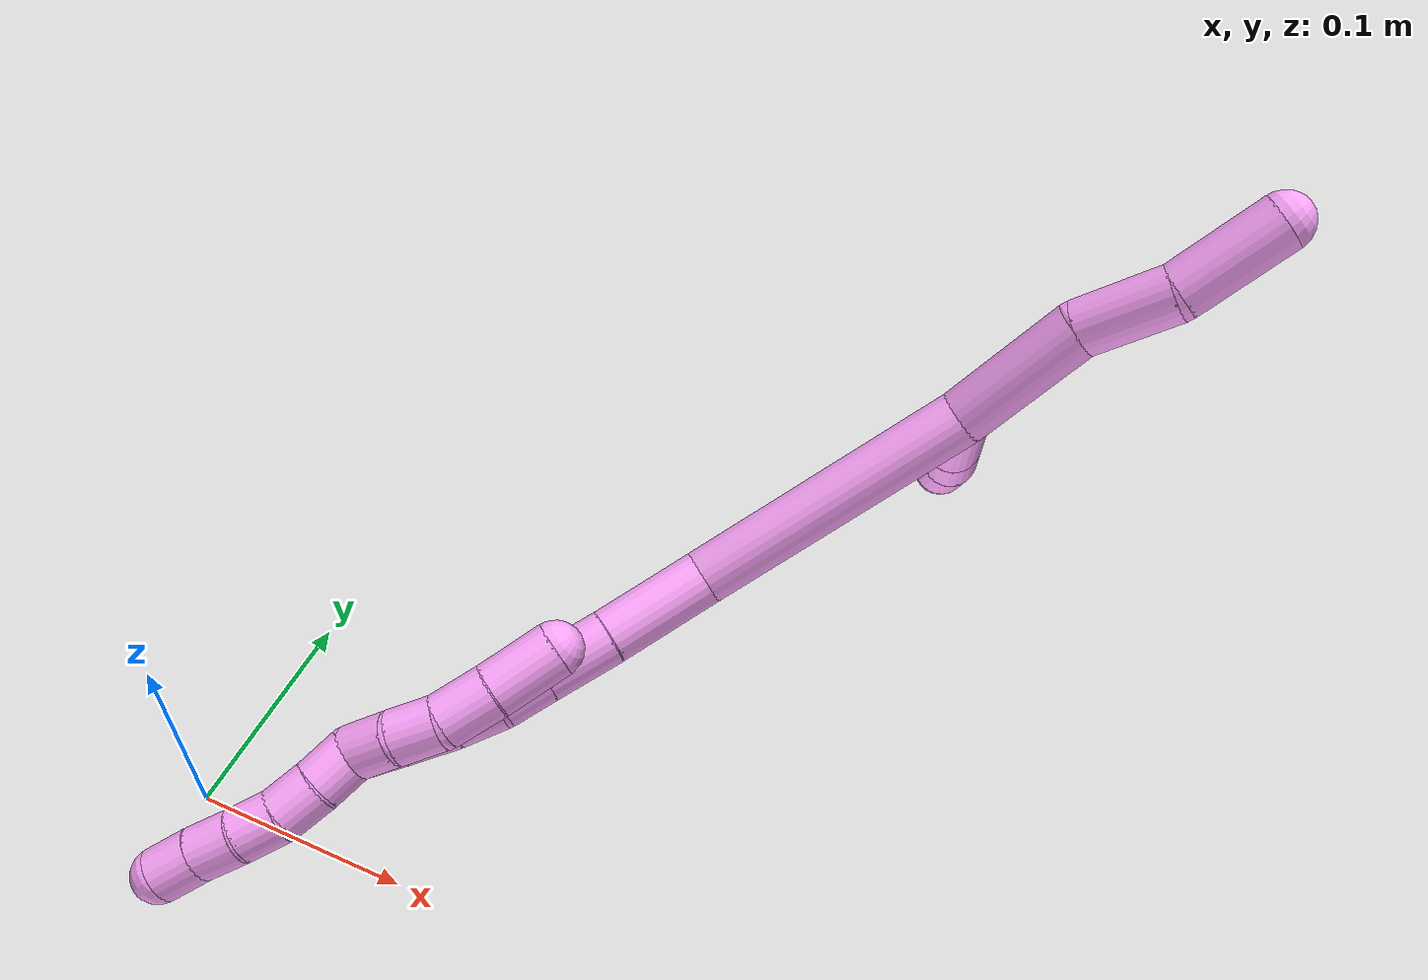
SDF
<sdf version="1.7">
 <world name="default">
  <model name="4">
   <static>0</static>
   <link name="4">
    <collision name="collision-cylinder-e_1_2_8">
     <pose>-0.001395 -0.004408 0.030344 0.144243 -0.045473 -0.003286</pose>
     <geometry><cylinder><radius>0.0125</radius><length>0.061388</length></cylinder></geometry>
     <surface>
      <friction><ode><mu>1.16</mu><mu2>1.16</mu2><slip1>0</slip1><slip2>0</slip2></ode></friction>
      <contact><ode><kp>1e+06</kp><kd>1</kd><max_vel>0</max_vel><min_depth>0.001</min_depth></ode></contact>
     </surface>
    </collision>
    <visual name="visual-cylinder-e_1_2_8">
     <pose>-0.001395 -0.004408 0.030344 0.144243 -0.045473 -0.003286</pose>
     <geometry><cylinder><radius>0.0125</radius><length>0.061388</length></cylinder></geometry>
     <material><ambient>1 0.65098 0.996078 1</ambient></material>
    </visual>
    <collision name="collision-cylinder-e_2_8_9">
     <pose>0.002059 -0.013838 0.080148 0.252595 0.236783 0.030204</pose>
     <geometry><cylinder><radius>0.0125</radius><length>0.041349</length></cylinder></geometry>
     <surface>
      <friction><ode><mu>1.16</mu><mu2>1.16</mu2><slip1>0</slip1><slip2>0</slip2></ode></friction>
      <contact><ode><kp>1e+06</kp><kd>1</kd><max_vel>0</max_vel><min_depth>0.001</min_depth></ode></contact>
     </surface>
    </collision>
    <visual name="visual-cylinder-e_2_8_9">
     <pose>0.002059 -0.013838 0.080148 0.252595 0.236783 0.030204</pose>
     <geometry><cylinder><radius>0.0125</radius><length>0.041349</length></cylinder></geometry>
     <material><ambient>1 0.65098 0.996078 1</ambient></material>
    </visual>
    <collision name="collision-cylinder-e_3_9_6">
     <pose>0.008066 -0.019452 0.123203 0.025056 0.048978 0.000614</pose>
     <geometry><cylinder><radius>0.0125</radius><length>0.047263</length></cylinder></geometry>
     <surface>
      <friction><ode><mu>1.16</mu><mu2>1.16</mu2><slip1>0</slip1><slip2>0</slip2></ode></friction>
      <contact><ode><kp>1e+06</kp><kd>1</kd><max_vel>0</max_vel><min_depth>0.001</min_depth></ode></contact>
     </surface>
    </collision>
    <visual name="visual-cylinder-e_3_9_6">
     <pose>0.008066 -0.019452 0.123203 0.025056 0.048978 0.000614</pose>
     <geometry><cylinder><radius>0.0125</radius><length>0.047263</length></cylinder></geometry>
     <material><ambient>1 0.65098 0.996078 1</ambient></material>
    </visual>
    <collision name="collision-cylinder-e_1_2_10">
     <pose>0.010504 0.021343 -0.007729 -1.91823 0.433396 -0.608261</pose>
     <geometry><cylinder><radius>0.0125</radius><length>0.050023</length></cylinder></geometry>
     <surface>
      <friction><ode><mu>1.16</mu><mu2>1.16</mu2><slip1>0</slip1><slip2>0</slip2></ode></friction>
      <contact><ode><kp>1e+06</kp><kd>1</kd><max_vel>0</max_vel><min_depth>0.001</min_depth></ode></contact>
     </surface>
    </collision>
    <visual name="visual-cylinder-e_1_2_10">
     <pose>0.010504 0.021343 -0.007729 -1.91823 0.433396 -0.608261</pose>
     <geometry><cylinder><radius>0.0125</radius><length>0.050023</length></cylinder></geometry>
     <material><ambient>1 0.65098 0.996078 1</ambient></material>
    </visual>
    <collision name="collision-cylinder-e_2_10_11">
     <pose>0.027049 0.055051 -0.019908 -1.91628 0.430936 -0.603737</pose>
     <geometry><cylinder><radius>0.0125</radius><length>0.02893</length></cylinder></geometry>
     <surface>
      <friction><ode><mu>1.16</mu><mu2>1.16</mu2><slip1>0</slip1><slip2>0</slip2></ode></friction>
      <contact><ode><kp>1e+06</kp><kd>1</kd><max_vel>0</max_vel><min_depth>0.001</min_depth></ode></contact>
     </surface>
    </collision>
    <visual name="visual-cylinder-e_2_10_11">
     <pose>0.027049 0.055051 -0.019908 -1.91628 0.430936 -0.603737</pose>
     <geometry><cylinder><radius>0.0125</radius><length>0.02893</length></cylinder></geometry>
     <material><ambient>1 0.65098 0.996078 1</ambient></material>
    </visual>
    <collision name="collision-cylinder-e_3_11_5">
     <pose>0.03617 0.076558 -0.028568 -2.00231 0.296815 -0.458656</pose>
     <geometry><cylinder><radius>0.0125</radius><length>0.021048</length></cylinder></geometry>
     <surface>
      <friction><ode><mu>1.16</mu><mu2>1.16</mu2><slip1>0</slip1><slip2>0</slip2></ode></friction>
      <contact><ode><kp>1e+06</kp><kd>1</kd><max_vel>0</max_vel><min_depth>0.001</min_depth></ode></contact>
     </surface>
    </collision>
    <visual name="visual-cylinder-e_3_11_5">
     <pose>0.03617 0.076558 -0.028568 -2.00231 0.296815 -0.458656</pose>
     <geometry><cylinder><radius>0.0125</radius><length>0.021048</length></cylinder></geometry>
     <material><ambient>1 0.65098 0.996078 1</ambient></material>
    </visual>
    <collision name="collision-cylinder-e_1_2_12">
     <pose>-0.008099 -0.006649 -0.064407 3.03872 -0.124431 -1.76033</pose>
     <geometry><cylinder><radius>0.0125</radius><length>0.130507</length></cylinder></geometry>
     <surface>
      <friction><ode><mu>1.16</mu><mu2>1.16</mu2><slip1>0</slip1><slip2>0</slip2></ode></friction>
      <contact><ode><kp>1e+06</kp><kd>1</kd><max_vel>0</max_vel><min_depth>0.001</min_depth></ode></contact>
     </surface>
    </collision>
    <visual name="visual-cylinder-e_1_2_12">
     <pose>-0.008099 -0.006649 -0.064407 3.03872 -0.124431 -1.76033</pose>
     <geometry><cylinder><radius>0.0125</radius><length>0.130507</length></cylinder></geometry>
     <material><ambient>1 0.65098 0.996078 1</ambient></material>
    </visual>
    <collision name="collision-cylinder-e_2_12_13">
     <pose>-0.021 -0.022724 -0.150907 2.73837 -0.197346 -0.902086</pose>
     <geometry><cylinder><radius>0.0125</radius><length>0.048992</length></cylinder></geometry>
     <surface>
      <friction><ode><mu>1.16</mu><mu2>1.16</mu2><slip1>0</slip1><slip2>0</slip2></ode></friction>
      <contact><ode><kp>1e+06</kp><kd>1</kd><max_vel>0</max_vel><min_depth>0.001</min_depth></ode></contact>
     </surface>
    </collision>
    <visual name="visual-cylinder-e_2_12_13">
     <pose>-0.021 -0.022724 -0.150907 2.73837 -0.197346 -0.902086</pose>
     <geometry><cylinder><radius>0.0125</radius><length>0.048992</length></cylinder></geometry>
     <material><ambient>1 0.65098 0.996078 1</ambient></material>
    </visual>
    <collision name="collision-cylinder-e_3_13_14">
     <pose>-0.029323 -0.0377 -0.187867 2.7842 -0.21826 -1.09051</pose>
     <geometry><cylinder><radius>0.0125</radius><length>0.032509</length></cylinder></geometry>
     <surface>
      <friction><ode><mu>1.16</mu><mu2>1.16</mu2><slip1>0</slip1><slip2>0</slip2></ode></friction>
      <contact><ode><kp>1e+06</kp><kd>1</kd><max_vel>0</max_vel><min_depth>0.001</min_depth></ode></contact>
     </surface>
    </collision>
    <visual name="visual-cylinder-e_3_13_14">
     <pose>-0.029323 -0.0377 -0.187867 2.7842 -0.21826 -1.09051</pose>
     <geometry><cylinder><radius>0.0125</radius><length>0.032509</length></cylinder></geometry>
     <material><ambient>1 0.65098 0.996078 1</ambient></material>
    </visual>
    <collision name="collision-cylinder-e_4_14_15">
     <pose>-0.03503 -0.046911 -0.212776 2.7922 -0.201903 -1.04206</pose>
     <geometry><cylinder><radius>0.0125</radius><length>0.02182</length></cylinder></geometry>
     <surface>
      <friction><ode><mu>1.16</mu><mu2>1.16</mu2><slip1>0</slip1><slip2>0</slip2></ode></friction>
      <contact><ode><kp>1e+06</kp><kd>1</kd><max_vel>0</max_vel><min_depth>0.001</min_depth></ode></contact>
     </surface>
    </collision>
    <visual name="visual-cylinder-e_4_14_15">
     <pose>-0.03503 -0.046911 -0.212776 2.7922 -0.201903 -1.04206</pose>
     <geometry><cylinder><radius>0.0125</radius><length>0.02182</length></cylinder></geometry>
     <material><ambient>1 0.65098 0.996078 1</ambient></material>
    </visual>
    <collision name="collision-cylinder-e_5_15_16">
     <pose>-0.040517 -0.052591 -0.23274 2.94056 -0.315033 -2.01012</pose>
     <geometry><cylinder><radius>0.0125</radius><length>0.021298</length></cylinder></geometry>
     <surface>
      <friction><ode><mu>1.16</mu><mu2>1.16</mu2><slip1>0</slip1><slip2>0</slip2></ode></friction>
      <contact><ode><kp>1e+06</kp><kd>1</kd><max_vel>0</max_vel><min_depth>0.001</min_depth></ode></contact>
     </surface>
    </collision>
    <visual name="visual-cylinder-e_5_15_16">
     <pose>-0.040517 -0.052591 -0.23274 2.94056 -0.315033 -2.01012</pose>
     <geometry><cylinder><radius>0.0125</radius><length>0.021298</length></cylinder></geometry>
     <material><ambient>1 0.65098 0.996078 1</ambient></material>
    </visual>
    <collision name="collision-cylinder-e_6_16_17">
     <pose>-0.048636 -0.05713 -0.253486 2.91311 -0.409151 -2.13128</pose>
     <geometry><cylinder><radius>0.0125</radius><length>0.024227</length></cylinder></geometry>
     <surface>
      <friction><ode><mu>1.16</mu><mu2>1.16</mu2><slip1>0</slip1><slip2>0</slip2></ode></friction>
      <contact><ode><kp>1e+06</kp><kd>1</kd><max_vel>0</max_vel><min_depth>0.001</min_depth></ode></contact>
     </surface>
    </collision>
    <visual name="visual-cylinder-e_6_16_17">
     <pose>-0.048636 -0.05713 -0.253486 2.91311 -0.409151 -2.13128</pose>
     <geometry><cylinder><radius>0.0125</radius><length>0.024227</length></cylinder></geometry>
     <material><ambient>1 0.65098 0.996078 1</ambient></material>
    </visual>
    <collision name="collision-cylinder-e_7_17_1">
     <pose>-0.058147 -0.063597 -0.272615 2.69764 -0.471726 -1.6336</pose>
     <geometry><cylinder><radius>0.0125</radius><length>0.020647</length></cylinder></geometry>
     <surface>
      <friction><ode><mu>1.16</mu><mu2>1.16</mu2><slip1>0</slip1><slip2>0</slip2></ode></friction>
      <contact><ode><kp>1e+06</kp><kd>1</kd><max_vel>0</max_vel><min_depth>0.001</min_depth></ode></contact>
     </surface>
    </collision>
    <visual name="visual-cylinder-e_7_17_1">
     <pose>-0.058147 -0.063597 -0.272615 2.69764 -0.471726 -1.6336</pose>
     <geometry><cylinder><radius>0.0125</radius><length>0.020647</length></cylinder></geometry>
     <material><ambient>1 0.65098 0.996078 1</ambient></material>
    </visual>
    <collision name="collision-cylinder-e_1_1_18">
     <pose>-0.062992 -0.071731 -0.290001 2.70984 -0.015378 -0.070097</pose>
     <geometry><cylinder><radius>0.0125</radius><length>0.02</length></cylinder></geometry>
     <surface>
      <friction><ode><mu>1.16</mu><mu2>1.16</mu2><slip1>0</slip1><slip2>0</slip2></ode></friction>
      <contact><ode><kp>1e+06</kp><kd>1</kd><max_vel>0</max_vel><min_depth>0.001</min_depth></ode></contact>
     </surface>
    </collision>
    <visual name="visual-cylinder-e_1_1_18">
     <pose>-0.062992 -0.071731 -0.290001 2.70984 -0.015378 -0.070097</pose>
     <geometry><cylinder><radius>0.0125</radius><length>0.02</length></cylinder></geometry>
     <material><ambient>1 0.65098 0.996078 1</ambient></material>
    </visual>
    <collision name="collision-cylinder-e_2_18_19">
     <pose>-0.063766 -0.079148 -0.308525 2.81175 -0.062108 -0.36904</pose>
     <geometry><cylinder><radius>0.0125</radius><length>0.02</length></cylinder></geometry>
     <surface>
      <friction><ode><mu>1.16</mu><mu2>1.16</mu2><slip1>0</slip1><slip2>0</slip2></ode></friction>
      <contact><ode><kp>1e+06</kp><kd>1</kd><max_vel>0</max_vel><min_depth>0.001</min_depth></ode></contact>
     </surface>
    </collision>
    <visual name="visual-cylinder-e_2_18_19">
     <pose>-0.063766 -0.079148 -0.308525 2.81175 -0.062108 -0.36904</pose>
     <geometry><cylinder><radius>0.0125</radius><length>0.02</length></cylinder></geometry>
     <material><ambient>1 0.65098 0.996078 1</ambient></material>
    </visual>
    <collision name="collision-cylinder-e_3_19_20">
     <pose>-0.066767 -0.084278 -0.327493 2.94497 -0.240319 -1.7717</pose>
     <geometry><cylinder><radius>0.0125</radius><length>0.02</length></cylinder></geometry>
     <surface>
      <friction><ode><mu>1.16</mu><mu2>1.16</mu2><slip1>0</slip1><slip2>0</slip2></ode></friction>
      <contact><ode><kp>1e+06</kp><kd>1</kd><max_vel>0</max_vel><min_depth>0.001</min_depth></ode></contact>
     </surface>
    </collision>
    <visual name="visual-cylinder-e_3_19_20">
     <pose>-0.066767 -0.084278 -0.327493 2.94497 -0.240319 -1.7717</pose>
     <geometry><cylinder><radius>0.0125</radius><length>0.02</length></cylinder></geometry>
     <material><ambient>1 0.65098 0.996078 1</ambient></material>
    </visual>
    <collision name="collision-cylinder-e_4_20_21">
     <pose>-0.071589 -0.086846 -0.346693 3.07246 -0.246699 -2.59756</pose>
     <geometry><cylinder><radius>0.0125</radius><length>0.02</length></cylinder></geometry>
     <surface>
      <friction><ode><mu>1.16</mu><mu2>1.16</mu2><slip1>0</slip1><slip2>0</slip2></ode></friction>
      <contact><ode><kp>1e+06</kp><kd>1</kd><max_vel>0</max_vel><min_depth>0.001</min_depth></ode></contact>
     </surface>
    </collision>
    <visual name="visual-cylinder-e_4_20_21">
     <pose>-0.071589 -0.086846 -0.346693 3.07246 -0.246699 -2.59756</pose>
     <geometry><cylinder><radius>0.0125</radius><length>0.02</length></cylinder></geometry>
     <material><ambient>1 0.65098 0.996078 1</ambient></material>
    </visual>
    <collision name="collision-cylinder-e_5_21_4">
     <pose>-0.075833 -0.08855 -0.366149 3.03626 -0.181189 -2.08999</pose>
     <geometry><cylinder><radius>0.0125</radius><length>0.02</length></cylinder></geometry>
     <surface>
      <friction><ode><mu>1.16</mu><mu2>1.16</mu2><slip1>0</slip1><slip2>0</slip2></ode></friction>
      <contact><ode><kp>1e+06</kp><kd>1</kd><max_vel>0</max_vel><min_depth>0.001</min_depth></ode></contact>
     </surface>
    </collision>
    <visual name="visual-cylinder-e_5_21_4">
     <pose>-0.075833 -0.08855 -0.366149 3.03626 -0.181189 -2.08999</pose>
     <geometry><cylinder><radius>0.0125</radius><length>0.02</length></cylinder></geometry>
     <material><ambient>1 0.65098 0.996078 1</ambient></material>
    </visual>
    <collision name="collision-cylinder-e_1_1_22">
     <pose>-0.060151 -0.069067 -0.270428 0.143842 0.248221 0.017975</pose>
     <geometry><cylinder><radius>0.0125</radius><length>0.021872</length></cylinder></geometry>
     <surface>
      <friction><ode><mu>1.16</mu><mu2>1.16</mu2><slip1>0</slip1><slip2>0</slip2></ode></friction>
      <contact><ode><kp>1e+06</kp><kd>1</kd><max_vel>0</max_vel><min_depth>0.001</min_depth></ode></contact>
     </surface>
    </collision>
    <visual name="visual-cylinder-e_1_1_22">
     <pose>-0.060151 -0.069067 -0.270428 0.143842 0.248221 0.017975</pose>
     <geometry><cylinder><radius>0.0125</radius><length>0.021872</length></cylinder></geometry>
     <material><ambient>1 0.65098 0.996078 1</ambient></material>
    </visual>
    <collision name="collision-cylinder-e_2_22_23">
     <pose>-0.053878 -0.070069 -0.249805 -0.051004 0.339759 -0.008751</pose>
     <geometry><cylinder><radius>0.0125</radius><length>0.021521</length></cylinder></geometry>
     <surface>
      <friction><ode><mu>1.16</mu><mu2>1.16</mu2><slip1>0</slip1><slip2>0</slip2></ode></friction>
      <contact><ode><kp>1e+06</kp><kd>1</kd><max_vel>0</max_vel><min_depth>0.001</min_depth></ode></contact>
     </surface>
    </collision>
    <visual name="visual-cylinder-e_2_22_23">
     <pose>-0.053878 -0.070069 -0.249805 -0.051004 0.339759 -0.008751</pose>
     <geometry><cylinder><radius>0.0125</radius><length>0.021521</length></cylinder></geometry>
     <material><ambient>1 0.65098 0.996078 1</ambient></material>
    </visual>
    <collision name="collision-cylinder-e_3_23_24">
     <pose>-0.04807 -0.066155 -0.227842 -0.279593 0.178628 -0.025201</pose>
     <geometry><cylinder><radius>0.0125</radius><length>0.025016</length></cylinder></geometry>
     <surface>
      <friction><ode><mu>1.16</mu><mu2>1.16</mu2><slip1>0</slip1><slip2>0</slip2></ode></friction>
      <contact><ode><kp>1e+06</kp><kd>1</kd><max_vel>0</max_vel><min_depth>0.001</min_depth></ode></contact>
     </surface>
    </collision>
    <visual name="visual-cylinder-e_3_23_24">
     <pose>-0.04807 -0.066155 -0.227842 -0.279593 0.178628 -0.025201</pose>
     <geometry><cylinder><radius>0.0125</radius><length>0.025016</length></cylinder></geometry>
     <material><ambient>1 0.65098 0.996078 1</ambient></material>
    </visual>
    <collision name="collision-cylinder-e_4_24_3">
     <pose>-0.043371 -0.057445 -0.201343 -0.347515 0.157408 -0.027685</pose>
     <geometry><cylinder><radius>0.0125</radius><length>0.031591</length></cylinder></geometry>
     <surface>
      <friction><ode><mu>1.16</mu><mu2>1.16</mu2><slip1>0</slip1><slip2>0</slip2></ode></friction>
      <contact><ode><kp>1e+06</kp><kd>1</kd><max_vel>0</max_vel><min_depth>0.001</min_depth></ode></contact>
     </surface>
    </collision>
    <visual name="visual-cylinder-e_4_24_3">
     <pose>-0.043371 -0.057445 -0.201343 -0.347515 0.157408 -0.027685</pose>
     <geometry><cylinder><radius>0.0125</radius><length>0.031591</length></cylinder></geometry>
     <material><ambient>1 0.65098 0.996078 1</ambient></material>
    </visual>
    <collision name="collision-sphere-3">
     <pose>-0.040895 -0.052133 -0.186675 0 -0 0</pose>
     <geometry><sphere><radius>0.0125</radius></sphere></geometry>
     <surface>
      <friction><ode><mu>1.16</mu><mu2>1.16</mu2><slip1>0</slip1><slip2>0</slip2></ode></friction>
      <contact><ode><kp>1e+06</kp><kd>1</kd><max_vel>0</max_vel><min_depth>0.001</min_depth></ode></contact>
     </surface>
    </collision>
    <visual name="visual-sphere-3">
     <pose>-0.040895 -0.052133 -0.186675 0 -0 0</pose>
     <geometry><sphere><radius>0.0125</radius></sphere></geometry>
     <material><ambient>1 0.65098 0.996078 1</ambient></material>
    </visual>
    <collision name="collision-sphere-24">
     <pose>-0.045847 -0.062758 -0.216011 0 -0 0</pose>
     <geometry><sphere><radius>0.0125</radius></sphere></geometry>
     <surface>
      <friction><ode><mu>1.16</mu><mu2>1.16</mu2><slip1>0</slip1><slip2>0</slip2></ode></friction>
      <contact><ode><kp>1e+06</kp><kd>1</kd><max_vel>0</max_vel><min_depth>0.001</min_depth></ode></contact>
     </surface>
    </collision>
    <visual name="visual-sphere-24">
     <pose>-0.045847 -0.062758 -0.216011 0 -0 0</pose>
     <geometry><sphere><radius>0.0125</radius></sphere></geometry>
     <material><ambient>1 0.65098 0.996078 1</ambient></material>
    </visual>
    <collision name="collision-sphere-23">
     <pose>-0.050292 -0.069552 -0.239672 0 -0 0</pose>
     <geometry><sphere><radius>0.0125</radius></sphere></geometry>
     <surface>
      <friction><ode><mu>1.16</mu><mu2>1.16</mu2><slip1>0</slip1><slip2>0</slip2></ode></friction>
      <contact><ode><kp>1e+06</kp><kd>1</kd><max_vel>0</max_vel><min_depth>0.001</min_depth></ode></contact>
     </surface>
    </collision>
    <visual name="visual-sphere-23">
     <pose>-0.050292 -0.069552 -0.239672 0 -0 0</pose>
     <geometry><sphere><radius>0.0125</radius></sphere></geometry>
     <material><ambient>1 0.65098 0.996078 1</ambient></material>
    </visual>
    <collision name="collision-sphere-22">
     <pose>-0.057464 -0.070586 -0.259937 0 -0 0</pose>
     <geometry><sphere><radius>0.0125</radius></sphere></geometry>
     <surface>
      <friction><ode><mu>1.16</mu><mu2>1.16</mu2><slip1>0</slip1><slip2>0</slip2></ode></friction>
      <contact><ode><kp>1e+06</kp><kd>1</kd><max_vel>0</max_vel><min_depth>0.001</min_depth></ode></contact>
     </surface>
    </collision>
    <visual name="visual-sphere-22">
     <pose>-0.057464 -0.070586 -0.259937 0 -0 0</pose>
     <geometry><sphere><radius>0.0125</radius></sphere></geometry>
     <material><ambient>1 0.65098 0.996078 1</ambient></material>
    </visual>
    <collision name="collision-sphere-4">
     <pose>-0.077635 -0.089584 -0.37593 0 -0 0</pose>
     <geometry><sphere><radius>0.0125</radius></sphere></geometry>
     <surface>
      <friction><ode><mu>1.16</mu><mu2>1.16</mu2><slip1>0</slip1><slip2>0</slip2></ode></friction>
      <contact><ode><kp>1e+06</kp><kd>1</kd><max_vel>0</max_vel><min_depth>0.001</min_depth></ode></contact>
     </surface>
    </collision>
    <visual name="visual-sphere-4">
     <pose>-0.077635 -0.089584 -0.37593 0 -0 0</pose>
     <geometry><sphere><radius>0.0125</radius></sphere></geometry>
     <material><ambient>1 0.65098 0.996078 1</ambient></material>
    </visual>
    <collision name="collision-sphere-21">
     <pose>-0.074031 -0.087516 -0.356367 0 -0 0</pose>
     <geometry><sphere><radius>0.0125</radius></sphere></geometry>
     <surface>
      <friction><ode><mu>1.16</mu><mu2>1.16</mu2><slip1>0</slip1><slip2>0</slip2></ode></friction>
      <contact><ode><kp>1e+06</kp><kd>1</kd><max_vel>0</max_vel><min_depth>0.001</min_depth></ode></contact>
     </surface>
    </collision>
    <visual name="visual-sphere-21">
     <pose>-0.074031 -0.087516 -0.356367 0 -0 0</pose>
     <geometry><sphere><radius>0.0125</radius></sphere></geometry>
     <material><ambient>1 0.65098 0.996078 1</ambient></material>
    </visual>
    <collision name="collision-sphere-20">
     <pose>-0.069147 -0.086176 -0.337019 0 -0 0</pose>
     <geometry><sphere><radius>0.0125</radius></sphere></geometry>
     <surface>
      <friction><ode><mu>1.16</mu><mu2>1.16</mu2><slip1>0</slip1><slip2>0</slip2></ode></friction>
      <contact><ode><kp>1e+06</kp><kd>1</kd><max_vel>0</max_vel><min_depth>0.001</min_depth></ode></contact>
     </surface>
    </collision>
    <visual name="visual-sphere-20">
     <pose>-0.069147 -0.086176 -0.337019 0 -0 0</pose>
     <geometry><sphere><radius>0.0125</radius></sphere></geometry>
     <material><ambient>1 0.65098 0.996078 1</ambient></material>
    </visual>
    <collision name="collision-sphere-11">
     <pose>0.033092 0.067417 -0.024359 0 -0 0</pose>
     <geometry><sphere><radius>0.0125</radius></sphere></geometry>
     <surface>
      <friction><ode><mu>1.16</mu><mu2>1.16</mu2><slip1>0</slip1><slip2>0</slip2></ode></friction>
      <contact><ode><kp>1e+06</kp><kd>1</kd><max_vel>0</max_vel><min_depth>0.001</min_depth></ode></contact>
     </surface>
    </collision>
    <visual name="visual-sphere-11">
     <pose>0.033092 0.067417 -0.024359 0 -0 0</pose>
     <geometry><sphere><radius>0.0125</radius></sphere></geometry>
     <material><ambient>1 0.65098 0.996078 1</ambient></material>
    </visual>
    <collision name="collision-sphere-10">
     <pose>0.021007 0.042685 -0.015457 0 -0 0</pose>
     <geometry><sphere><radius>0.0125</radius></sphere></geometry>
     <surface>
      <friction><ode><mu>1.16</mu><mu2>1.16</mu2><slip1>0</slip1><slip2>0</slip2></ode></friction>
      <contact><ode><kp>1e+06</kp><kd>1</kd><max_vel>0</max_vel><min_depth>0.001</min_depth></ode></contact>
     </surface>
    </collision>
    <visual name="visual-sphere-10">
     <pose>0.021007 0.042685 -0.015457 0 -0 0</pose>
     <geometry><sphere><radius>0.0125</radius></sphere></geometry>
     <material><ambient>1 0.65098 0.996078 1</ambient></material>
    </visual>
    <collision name="collision-sphere-6">
     <pose>0.009223 -0.020043 0.146799 0 -0 0</pose>
     <geometry><sphere><radius>0.0125</radius></sphere></geometry>
     <surface>
      <friction><ode><mu>1.16</mu><mu2>1.16</mu2><slip1>0</slip1><slip2>0</slip2></ode></friction>
      <contact><ode><kp>1e+06</kp><kd>1</kd><max_vel>0</max_vel><min_depth>0.001</min_depth></ode></contact>
     </surface>
    </collision>
    <visual name="visual-sphere-6">
     <pose>0.009223 -0.020043 0.146799 0 -0 0</pose>
     <geometry><sphere><radius>0.0125</radius></sphere></geometry>
     <material><ambient>1 0.65098 0.996078 1</ambient></material>
    </visual>
    <collision name="collision-sphere-9">
     <pose>0.006909 -0.018861 0.099608 0 -0 0</pose>
     <geometry><sphere><radius>0.0125</radius></sphere></geometry>
     <surface>
      <friction><ode><mu>1.16</mu><mu2>1.16</mu2><slip1>0</slip1><slip2>0</slip2></ode></friction>
      <contact><ode><kp>1e+06</kp><kd>1</kd><max_vel>0</max_vel><min_depth>0.001</min_depth></ode></contact>
     </surface>
    </collision>
    <visual name="visual-sphere-9">
     <pose>0.006909 -0.018861 0.099608 0 -0 0</pose>
     <geometry><sphere><radius>0.0125</radius></sphere></geometry>
     <material><ambient>1 0.65098 0.996078 1</ambient></material>
    </visual>
    <collision name="collision-sphere-2">
     <geometry><sphere><radius>0.0125</radius></sphere></geometry>
     <surface>
      <friction><ode><mu>1.16</mu><mu2>1.16</mu2><slip1>0</slip1><slip2>0</slip2></ode></friction>
      <contact><ode><kp>1e+06</kp><kd>1</kd><max_vel>0</max_vel><min_depth>0.001</min_depth></ode></contact>
     </surface>
    </collision>
    <visual name="visual-sphere-2">
     <geometry><sphere><radius>0.0125</radius></sphere></geometry>
     <material><ambient>1 0.65098 0.996078 1</ambient></material>
    </visual>
    <collision name="collision-sphere-19">
     <pose>-0.064387 -0.082381 -0.317968 0 -0 0</pose>
     <geometry><sphere><radius>0.0125</radius></sphere></geometry>
     <surface>
      <friction><ode><mu>1.16</mu><mu2>1.16</mu2><slip1>0</slip1><slip2>0</slip2></ode></friction>
      <contact><ode><kp>1e+06</kp><kd>1</kd><max_vel>0</max_vel><min_depth>0.001</min_depth></ode></contact>
     </surface>
    </collision>
    <visual name="visual-sphere-19">
     <pose>-0.064387 -0.082381 -0.317968 0 -0 0</pose>
     <geometry><sphere><radius>0.0125</radius></sphere></geometry>
     <material><ambient>1 0.65098 0.996078 1</ambient></material>
    </visual>
    <collision name="collision-sphere-8">
     <pose>-0.002791 -0.008815 0.060688 0 -0 0</pose>
     <geometry><sphere><radius>0.0125</radius></sphere></geometry>
     <surface>
      <friction><ode><mu>1.16</mu><mu2>1.16</mu2><slip1>0</slip1><slip2>0</slip2></ode></friction>
      <contact><ode><kp>1e+06</kp><kd>1</kd><max_vel>0</max_vel><min_depth>0.001</min_depth></ode></contact>
     </surface>
    </collision>
    <visual name="visual-sphere-8">
     <pose>-0.002791 -0.008815 0.060688 0 -0 0</pose>
     <geometry><sphere><radius>0.0125</radius></sphere></geometry>
     <material><ambient>1 0.65098 0.996078 1</ambient></material>
    </visual>
    <collision name="collision-sphere-5">
     <pose>0.039248 0.085699 -0.032777 0 -0 0</pose>
     <geometry><sphere><radius>0.0125</radius></sphere></geometry>
     <surface>
      <friction><ode><mu>1.16</mu><mu2>1.16</mu2><slip1>0</slip1><slip2>0</slip2></ode></friction>
      <contact><ode><kp>1e+06</kp><kd>1</kd><max_vel>0</max_vel><min_depth>0.001</min_depth></ode></contact>
     </surface>
    </collision>
    <visual name="visual-sphere-5">
     <pose>0.039248 0.085699 -0.032777 0 -0 0</pose>
     <geometry><sphere><radius>0.0125</radius></sphere></geometry>
     <material><ambient>1 0.65098 0.996078 1</ambient></material>
    </visual>
    <collision name="collision-sphere-12">
     <pose>-0.016197 -0.013298 -0.128813 0 -0 0</pose>
     <geometry><sphere><radius>0.0125</radius></sphere></geometry>
     <surface>
      <friction><ode><mu>1.16</mu><mu2>1.16</mu2><slip1>0</slip1><slip2>0</slip2></ode></friction>
      <contact><ode><kp>1e+06</kp><kd>1</kd><max_vel>0</max_vel><min_depth>0.001</min_depth></ode></contact>
     </surface>
    </collision>
    <visual name="visual-sphere-12">
     <pose>-0.016197 -0.013298 -0.128813 0 -0 0</pose>
     <geometry><sphere><radius>0.0125</radius></sphere></geometry>
     <material><ambient>1 0.65098 0.996078 1</ambient></material>
    </visual>
    <collision name="collision-sphere-13">
     <pose>-0.025803 -0.032149 -0.173001 0 -0 0</pose>
     <geometry><sphere><radius>0.0125</radius></sphere></geometry>
     <surface>
      <friction><ode><mu>1.16</mu><mu2>1.16</mu2><slip1>0</slip1><slip2>0</slip2></ode></friction>
      <contact><ode><kp>1e+06</kp><kd>1</kd><max_vel>0</max_vel><min_depth>0.001</min_depth></ode></contact>
     </surface>
    </collision>
    <visual name="visual-sphere-13">
     <pose>-0.025803 -0.032149 -0.173001 0 -0 0</pose>
     <geometry><sphere><radius>0.0125</radius></sphere></geometry>
     <material><ambient>1 0.65098 0.996078 1</ambient></material>
    </visual>
    <collision name="collision-sphere-14">
     <pose>-0.032842 -0.043252 -0.202734 0 -0 0</pose>
     <geometry><sphere><radius>0.0125</radius></sphere></geometry>
     <surface>
      <friction><ode><mu>1.16</mu><mu2>1.16</mu2><slip1>0</slip1><slip2>0</slip2></ode></friction>
      <contact><ode><kp>1e+06</kp><kd>1</kd><max_vel>0</max_vel><min_depth>0.001</min_depth></ode></contact>
     </surface>
    </collision>
    <visual name="visual-sphere-14">
     <pose>-0.032842 -0.043252 -0.202734 0 -0 0</pose>
     <geometry><sphere><radius>0.0125</radius></sphere></geometry>
     <material><ambient>1 0.65098 0.996078 1</ambient></material>
    </visual>
    <collision name="collision-sphere-15">
     <pose>-0.037218 -0.05057 -0.222819 0 -0 0</pose>
     <geometry><sphere><radius>0.0125</radius></sphere></geometry>
     <surface>
      <friction><ode><mu>1.16</mu><mu2>1.16</mu2><slip1>0</slip1><slip2>0</slip2></ode></friction>
      <contact><ode><kp>1e+06</kp><kd>1</kd><max_vel>0</max_vel><min_depth>0.001</min_depth></ode></contact>
     </surface>
    </collision>
    <visual name="visual-sphere-15">
     <pose>-0.037218 -0.05057 -0.222819 0 -0 0</pose>
     <geometry><sphere><radius>0.0125</radius></sphere></geometry>
     <material><ambient>1 0.65098 0.996078 1</ambient></material>
    </visual>
    <collision name="collision-sphere-16">
     <pose>-0.043817 -0.054613 -0.242661 0 -0 0</pose>
     <geometry><sphere><radius>0.0125</radius></sphere></geometry>
     <surface>
      <friction><ode><mu>1.16</mu><mu2>1.16</mu2><slip1>0</slip1><slip2>0</slip2></ode></friction>
      <contact><ode><kp>1e+06</kp><kd>1</kd><max_vel>0</max_vel><min_depth>0.001</min_depth></ode></contact>
     </surface>
    </collision>
    <visual name="visual-sphere-16">
     <pose>-0.043817 -0.054613 -0.242661 0 -0 0</pose>
     <geometry><sphere><radius>0.0125</radius></sphere></geometry>
     <material><ambient>1 0.65098 0.996078 1</ambient></material>
    </visual>
    <collision name="collision-sphere-17">
     <pose>-0.053455 -0.059648 -0.264311 0 -0 0</pose>
     <geometry><sphere><radius>0.0125</radius></sphere></geometry>
     <surface>
      <friction><ode><mu>1.16</mu><mu2>1.16</mu2><slip1>0</slip1><slip2>0</slip2></ode></friction>
      <contact><ode><kp>1e+06</kp><kd>1</kd><max_vel>0</max_vel><min_depth>0.001</min_depth></ode></contact>
     </surface>
    </collision>
    <visual name="visual-sphere-17">
     <pose>-0.053455 -0.059648 -0.264311 0 -0 0</pose>
     <geometry><sphere><radius>0.0125</radius></sphere></geometry>
     <material><ambient>1 0.65098 0.996078 1</ambient></material>
    </visual>
    <collision name="collision-sphere-1">
     <pose>-0.062838 -0.067547 -0.28092 0 -0 0</pose>
     <geometry><sphere><radius>0.0125</radius></sphere></geometry>
     <surface>
      <friction><ode><mu>1.16</mu><mu2>1.16</mu2><slip1>0</slip1><slip2>0</slip2></ode></friction>
      <contact><ode><kp>1e+06</kp><kd>1</kd><max_vel>0</max_vel><min_depth>0.001</min_depth></ode></contact>
     </surface>
    </collision>
    <visual name="visual-sphere-1">
     <pose>-0.062838 -0.067547 -0.28092 0 -0 0</pose>
     <geometry><sphere><radius>0.0125</radius></sphere></geometry>
     <material><ambient>1 0.65098 0.996078 1</ambient></material>
    </visual>
    <collision name="collision-sphere-18">
     <pose>-0.063145 -0.075915 -0.299082 0 -0 0</pose>
     <geometry><sphere><radius>0.0125</radius></sphere></geometry>
     <surface>
      <friction><ode><mu>1.16</mu><mu2>1.16</mu2><slip1>0</slip1><slip2>0</slip2></ode></friction>
      <contact><ode><kp>1e+06</kp><kd>1</kd><max_vel>0</max_vel><min_depth>0.001</min_depth></ode></contact>
     </surface>
    </collision>
    <visual name="visual-sphere-18">
     <pose>-0.063145 -0.075915 -0.299082 0 -0 0</pose>
     <geometry><sphere><radius>0.0125</radius></sphere></geometry>
     <material><ambient>1 0.65098 0.996078 1</ambient></material>
    </visual>
    <inertial>
     <pose>-0.021949 -0.026983 -0.119958 0 -0 0</pose>
     <mass>0.75</mass>
     <inertia>
      <ixx>-0.000182</ixx>
      <ixy>0</ixy>
      <ixz>0</ixz>
      <iyy>-0.000138</iyy>
      <iyz>0</iyz>
      <izz>2.5e-05</izz>
     </inertia>
    </inertial>
   </link>
   <pose>0.255332 0.239286 0.134672 -0.723278 0.685103 -0.147894</pose>
  </model>
 </world>
</sdf>
